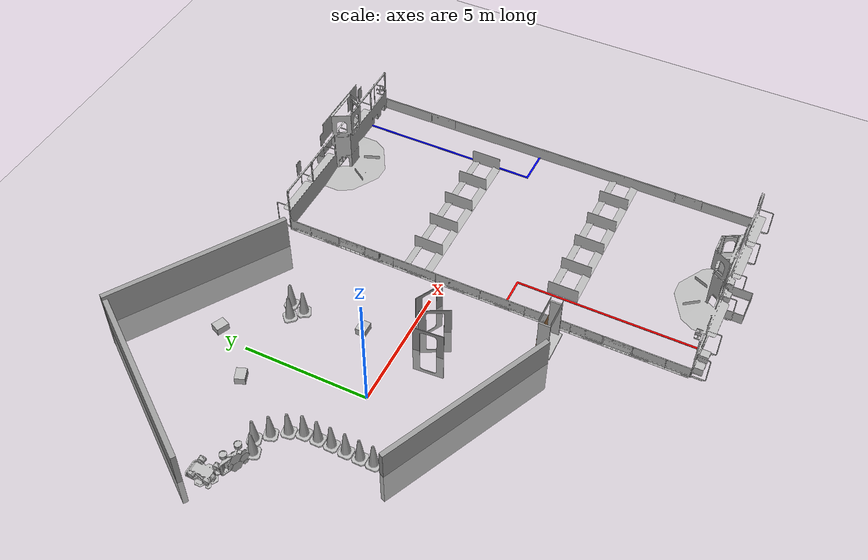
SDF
<sdf version="1.7">
 <world name="default">
  <light name="sun" type="directional">
   <pose>0 0 10 0 -0 0</pose>
   <diffuse>0.8 0.8 0.8 1</diffuse>
   <specular>0.2 0.2 0.2 1</specular>
   <attenuation>
    <range>1000</range>
    <constant>0.9</constant>
    <linear>0.01</linear>
    <quadratic>0.001</quadratic>
   </attenuation>
   <direction>-0.5 0.1 -0.9</direction>
   <spot><inner_angle>0</inner_angle><outer_angle>0</outer_angle><falloff>0</falloff></spot>
  </light>
  <model name="ground_plane">
   <static>1</static>
   <link name="link">
    <collision name="collision">
     <geometry><plane><normal>0 0 1</normal><size>100 100</size></plane></geometry>
     <surface>
      <contact><collide_bitmask>65535</collide_bitmask></contact>
      <friction><ode><mu>100</mu><mu2>50</mu2></ode></friction>
     </surface>
    </collision>
    <visual name="visual">
     <cast_shadows>0</cast_shadows>
     <geometry><plane><normal>0 0 1</normal><size>100 100</size></plane></geometry>
     <material>
      <script><uri>file://media/materials/scripts/gazebo.material</uri><name>Gazebo/Grey</name></script>
     </material>
    </visual>
   </link>
  </model>
  <gravity>0 0 -9.8</gravity>
  <magnetic_field>6e-06 2.3e-05 -4.2e-05</magnetic_field>
  <atmosphere type="adiabatic"/>
  <physics type="ode">
   <max_step_size>0.001</max_step_size>
   <real_time_factor>1</real_time_factor>
   <real_time_update_rate>1000</real_time_update_rate>
  </physics>
  <scene><ambient>0.4 0.4 0.4 1</ambient><background>0.7 0.7 0.7 1</background><shadows>1</shadows></scene>
  <audio><device>default</device></audio>
  <spherical_coordinates>
   <surface_model>EARTH_WGS84</surface_model>
   <latitude_deg>0</latitude_deg>
   <longitude_deg>0</longitude_deg>
   <elevation>0</elevation>
   <heading_deg>0</heading_deg>
  </spherical_coordinates>
  <model name="Construction Cone">
   <link name="link">
    <collision name="collision">
     <geometry>
      <mesh><scale>10 10 10</scale><uri>model://construction_cone/meshes/construction_cone.dae</uri></mesh>
     </geometry>
    </collision>
    <visual name="visual">
     <geometry>
      <mesh><scale>10 10 10</scale><uri>model://construction_cone/meshes/construction_cone.dae</uri></mesh>
     </geometry>
    </visual>
    <inertial>
     <inertia><ixx>1</ixx><ixy>0</ixy><ixz>0</ixz><iyy>1</iyy><iyz>0</iyz><izz>1</izz></inertia>
     <mass>1</mass>
    </inertial>
   </link>
   <pose>-2.26482 0.118974 -3e-06 -3e-06 -1e-06 -1.8e-05</pose>
  </model>
  <model name="Construction Cone_clone">
   <link name="link">
    <collision name="collision">
     <geometry>
      <mesh><scale>10 10 10</scale><uri>model://construction_cone/meshes/construction_cone.dae</uri></mesh>
     </geometry>
    </collision>
    <visual name="visual">
     <geometry>
      <mesh><scale>10 10 10</scale><uri>model://construction_cone/meshes/construction_cone.dae</uri></mesh>
     </geometry>
    </visual>
    <inertial>
     <inertia><ixx>1</ixx><ixy>0</ixy><ixz>0</ixz><iyy>1</iyy><iyz>0</iyz><izz>1</izz></inertia>
     <mass>1</mass>
    </inertial>
   </link>
   <pose>-2.2692 0.650098 -2e-06 -3e-06 -1e-06 -0</pose>
  </model>
  <model name="Construction Cone_clone_clone">
   <link name="link">
    <collision name="collision">
     <geometry>
      <mesh><scale>10 10 10</scale><uri>model://construction_cone/meshes/construction_cone.dae</uri></mesh>
     </geometry>
    </collision>
    <visual name="visual">
     <geometry>
      <mesh><scale>10 10 10</scale><uri>model://construction_cone/meshes/construction_cone.dae</uri></mesh>
     </geometry>
    </visual>
    <inertial>
     <inertia><ixx>1</ixx><ixy>0</ixy><ixz>0</ixz><iyy>1</iyy><iyz>0</iyz><izz>1</izz></inertia>
     <mass>1</mass>
    </inertial>
   </link>
   <pose>-2.27918 1.19398 -6e-06 -4e-06 -0 0.001973</pose>
  </model>
  <model name="Construction Cone_clone_clone_0">
   <link name="link">
    <collision name="collision">
     <geometry>
      <mesh><scale>10 10 10</scale><uri>model://construction_cone/meshes/construction_cone.dae</uri></mesh>
     </geometry>
    </collision>
    <visual name="visual">
     <geometry>
      <mesh><scale>10 10 10</scale><uri>model://construction_cone/meshes/construction_cone.dae</uri></mesh>
     </geometry>
    </visual>
    <inertial>
     <inertia><ixx>1</ixx><ixy>0</ixy><ixz>0</ixz><iyy>1</iyy><iyz>0</iyz><izz>1</izz></inertia>
     <mass>1</mass>
    </inertial>
   </link>
   <pose>-2.454 1.69918 0 0 -0 0.156364</pose>
  </model>
  <model name="Construction Cone_clone_clone_1">
   <link name="link">
    <collision name="collision">
     <geometry>
      <mesh><scale>10 10 10</scale><uri>model://construction_cone/meshes/construction_cone.dae</uri></mesh>
     </geometry>
    </collision>
    <visual name="visual">
     <geometry>
      <mesh><scale>10 10 10</scale><uri>model://construction_cone/meshes/construction_cone.dae</uri></mesh>
     </geometry>
    </visual>
    <inertial>
     <inertia><ixx>1</ixx><ixy>0</ixy><ixz>0</ixz><iyy>1</iyy><iyz>0</iyz><izz>1</izz></inertia>
     <mass>1</mass>
    </inertial>
   </link>
   <pose>-2.81331 2.20059 -9e-06 1e-06 -1e-06 0.33952</pose>
  </model>
  <model name="grey_wall">
   <static>1</static>
   <link name="link">
    <pose>0 0 1.4 0 -0 0</pose>
    <collision name="collision"><geometry><box><size>7.5 0.2 2.8</size></box></geometry></collision>
    <visual name="visual">
     <cast_shadows>0</cast_shadows>
     <geometry><box><size>7.5 0.2 2.8</size></box></geometry>
     <material>
      <script>
       <uri>model://grey_wall/materials/scripts</uri>
       <uri>model://grey_wall/materials/textures</uri>
       <name>vrc/grey_wall</name>
      </script>
     </material>
    </visual>
   </link>
   <pose>0.892861 -3.46173 -1.59967 0 0 -0.423133</pose>
  </model>
  <model name="Construction Cone_clone_0">
   <link name="link">
    <collision name="collision">
     <geometry>
      <mesh><scale>10 10 10</scale><uri>model://construction_cone/meshes/construction_cone.dae</uri></mesh>
     </geometry>
    </collision>
    <visual name="visual">
     <geometry>
      <mesh><scale>10 10 10</scale><uri>model://construction_cone/meshes/construction_cone.dae</uri></mesh>
     </geometry>
    </visual>
    <inertial>
     <inertia><ixx>1</ixx><ixy>0</ixy><ixz>0</ixz><iyy>1</iyy><iyz>0</iyz><izz>1</izz></inertia>
     <mass>1</mass>
    </inertial>
   </link>
   <pose>-2.28246 -0.445704 -6e-06 -4e-06 1e-06 -1.8e-05</pose>
  </model>
  <model name="Construction Cone_clone_1">
   <link name="link">
    <collision name="collision">
     <geometry>
      <mesh><scale>10 10 10</scale><uri>model://construction_cone/meshes/construction_cone.dae</uri></mesh>
     </geometry>
    </collision>
    <visual name="visual">
     <geometry>
      <mesh><scale>10 10 10</scale><uri>model://construction_cone/meshes/construction_cone.dae</uri></mesh>
     </geometry>
    </visual>
    <inertial>
     <inertia><ixx>1</ixx><ixy>0</ixy><ixz>0</ixz><iyy>1</iyy><iyz>0</iyz><izz>1</izz></inertia>
     <mass>1</mass>
    </inertial>
   </link>
   <pose>-2.28745 -0.990671 0 -0 -0 -1.8e-05</pose>
  </model>
  <model name="Construction Cone_clone_2">
   <link name="link">
    <collision name="collision">
     <geometry>
      <mesh><scale>10 10 10</scale><uri>model://construction_cone/meshes/construction_cone.dae</uri></mesh>
     </geometry>
    </collision>
    <visual name="visual">
     <geometry>
      <mesh><scale>10 10 10</scale><uri>model://construction_cone/meshes/construction_cone.dae</uri></mesh>
     </geometry>
    </visual>
    <inertial>
     <inertia><ixx>1</ixx><ixy>0</ixy><ixz>0</ixz><iyy>1</iyy><iyz>0</iyz><izz>1</izz></inertia>
     <mass>1</mass>
    </inertial>
   </link>
   <pose>-2.28327 -1.51157 -0 0 0 -1.8e-05</pose>
  </model>
  <model name="frc2016_drawbridge">
   <link name="base">
    <inertial>
     <mass>10</mass>
     <pose>0 0 1 0 -0 0</pose>
     <inertia><ixx>3.64907</ixx><ixy>0</ixy><ixz>0</ixz><iyy>4.67075</iyy><iyz>0</iyz><izz>1.66649</izz></inertia>
    </inertial>
    <visual name="platform">
     <pose>0 0 0.0425 0 -0 0</pose>
     <geometry><box><size>1.27 0.5969 0.085</size></box></geometry>
    </visual>
    <collision name="platform">
     <pose>0 0 0.0425 0 -0 0</pose>
     <geometry><box><size>1.27 0.5969 0.085</size></box></geometry>
    </collision>
    <visual name="right_wall">
     <pose>0.55879 0.04444 0.889 0 -0 0</pose>
     <geometry><box><size>0.05715 0.45698 1.77165</size></box></geometry>
    </visual>
    <collision name="right_wall">
     <pose>0.55879 0.04444 0.889 0 -0 0</pose>
     <geometry><box><size>0.05715 0.45698 1.77165</size></box></geometry>
    </collision>
    <visual name="left_wall">
     <pose>-0.55879 0.04444 0.889 0 -0 0</pose>
     <geometry><box><size>0.05715 0.45698 1.77165</size></box></geometry>
    </visual>
    <collision name="left_wall">
     <pose>-0.55879 0.04444 0.889 0 -0 0</pose>
     <geometry><box><size>0.05715 0.45698 1.77165</size></box></geometry>
    </collision>
    <visual name="front_upper_wall">
     <pose>0 0.27611 1.84286 0 -0 0</pose>
     <geometry><box><size>1.1557 0.006347 0.254</size></box></geometry>
    </visual>
    <collision name="front_upper_wall">
     <pose>0 0.27611 1.84286 0 -0 0</pose>
     <geometry><box><size>1.1557 0.006347 0.254</size></box></geometry>
    </collision>
    <visual name="back_upper_wall">
     <pose>0 -0.18722 1.84286 0 -0 0</pose>
     <geometry><box><size>1.1557 0.006347 0.254</size></box></geometry>
    </visual>
    <collision name="back_upper_wall">
     <pose>0 -0.18722 1.84286 0 -0 0</pose>
     <geometry><box><size>1.1557 0.006347 0.254</size></box></geometry>
    </collision>
   </link>
   <link name="bridge">
    <pose>0 0.28245 0.50577 0 -0 0</pose>
    <inertial>
     <mass>2</mass>
     <pose>0 -0.28245 -0.50577 0 -0 0</pose>
     <inertia>
      <ixx>0.139361</ixx>
      <ixy>0</ixy>
      <ixz>0</ixz>
      <iyy>0.357088</iyy>
      <iyz>0</iyz>
      <izz>0.217741</izz>
     </inertia>
    </inertial>
    <visual name="visual">
     <geometry><box><size>1.14298 0.006347 0.9144</size></box></geometry>
     <material><script><name>Gazebo/WoodFloor</name><uri>__default__</uri></script></material>
    </visual>
    <collision name="collision"><geometry><box><size>1.14298 0.006347 0.9144</size></box></geometry></collision>
   </link>
   <joint name="bridge_joint" type="revolute">
    <pose>0 0 -0.4172 0 -0 0</pose>
    <parent>base</parent>
    <child>bridge</child>
    <axis>
     <xyz>1 0 0</xyz>
     <limit><lower>-2</lower><upper>0</upper></limit>
     <dynamics><spring_reference>0</spring_reference><spring_stiffness>0</spring_stiffness></dynamics>
    </axis>
   </joint>
   <pose>5.03385 -4.79171 0 0 1e-06 0.006136</pose>
  </model>
  <model name="frc2016_field">
   <static>1</static>
   <link name="walls">
    <visual name="walls_visual">
     <geometry><mesh><uri>model://frc2016_field/meshes/walls.dae</uri></mesh></geometry>
    </visual>
    <collision name="front_turret">
     <geometry><mesh><uri>model://frc2016_field/meshes/turret_collide.dae</uri></mesh></geometry>
    </collision>
    <collision name="back_turret">
     <pose>0 0 0 0 -0 3.1415</pose>
     <geometry><mesh><uri>model://frc2016_field/meshes/turret_collide.dae</uri></mesh></geometry>
    </collision>
    <collision name="left_wall">
     <pose>4.09997 0 0.2413 0 -0 0</pose>
     <geometry><box><size>0.1 16.4592 0.4826</size></box></geometry>
    </collision>
    <collision name="right_wall">
     <pose>-4.09997 0 0.2413 0 -0 0</pose>
     <geometry><box><size>0.1 16.4592 0.4826</size></box></geometry>
    </collision>
    <collision name="front_solid_wall">
     <pose>-2.2105 8.2196 1 0 -0 0</pose>
     <geometry><box><size>3.8 0.1 2</size></box></geometry>
    </collision>
    <collision name="back_solid_wall">
     <pose>2.2105 -8.2196 1 0 -0 0</pose>
     <geometry><box><size>3.8 0.1 2</size></box></geometry>
    </collision>
    <collision name="front_partial_wall">
     <pose>1.85 8.2196 1 0 -0 0</pose>
     <geometry><box><size>2.1 0.1 2</size></box></geometry>
    </collision>
    <collision name="front_partial_wall_mid">
     <pose>3.4 8.2196 0.86 0 -0 0</pose>
     <geometry><box><size>1.25 0.1 1.12</size></box></geometry>
    </collision>
    <collision name="front_partial_wall_lower_left">
     <pose>3.36 8.2196 0.25 0 -0 0</pose>
     <geometry><box><size>0.3 0.1 0.5</size></box></geometry>
    </collision>
    <collision name="front_partial_wall_lower_right">
     <pose>4 8.2196 0.25 0 -0 0</pose>
     <geometry><box><size>0.3 0.1 0.5</size></box></geometry>
    </collision>
    <collision name="front_partial_wall_upper_right">
     <pose>3.76 8.2196 1.7 0 -0 0</pose>
     <geometry><box><size>0.54 0.1 0.6</size></box></geometry>
    </collision>
    <collision name="front_partial_wall_upper_left">
     <pose>2.95 8.2196 1.7 0 -0 0</pose>
     <geometry><box><size>0.54 0.1 0.6</size></box></geometry>
    </collision>
    <collision name="front_partial_wall_upper_mid">
     <pose>3.36 8.2196 1.84 0 -0 0</pose>
     <geometry><box><size>0.3 0.1 0.3</size></box></geometry>
    </collision>
    <collision name="back_partial_wall">
     <pose>-1.85 -8.2196 1 0 -0 0</pose>
     <geometry><box><size>2.1 0.1 2</size></box></geometry>
    </collision>
    <collision name="back_partial_wall_mid">
     <pose>-3.4 -8.2196 0.86 0 -0 0</pose>
     <geometry><box><size>1.25 0.1 1.12</size></box></geometry>
    </collision>
    <collision name="back_partial_wall_lower_left">
     <pose>-3.36 -8.2196 0.25 0 -0 0</pose>
     <geometry><box><size>0.3 0.1 0.5</size></box></geometry>
    </collision>
    <collision name="back_partial_wall_lower_right">
     <pose>-4 -8.2196 0.25 0 -0 0</pose>
     <geometry><box><size>0.3 0.1 0.5</size></box></geometry>
    </collision>
    <collision name="back_partial_wall_upper_right">
     <pose>-3.76 -8.2196 1.7 0 -0 0</pose>
     <geometry><box><size>0.54 0.1 0.6</size></box></geometry>
    </collision>
    <collision name="back_partial_wall_upper_left">
     <pose>-2.95 -8.2196 1.7 0 -0 0</pose>
     <geometry><box><size>0.54 0.1 0.6</size></box></geometry>
    </collision>
    <collision name="back_partial_wall_upper_mid">
     <pose>-3.36 -8.2196 1.84 0 -0 0</pose>
     <geometry><box><size>0.3 0.1 0.3</size></box></geometry>
    </collision>
    <visual name="blue_passage_border_long">
     <pose>2.72665 4.5882 0.0127 0 -0 0</pose>
     <geometry><box><size>0.0762 7.3025 0.0254</size></box></geometry>
     <material><ambient>0 0 1 1</ambient><diffuse>0 0 1 1</diffuse></material>
    </visual>
    <collision name="blue_passage_border_long">
     <pose>2.72665 4.5882 0.0127 0 -0 0</pose>
     <geometry><box><size>0.0762 7.3025 0.0254</size></box></geometry>
    </collision>
    <visual name="blue_passage_border_short">
     <pose>3.37435 0.97352 0.0127 0 -0 0</pose>
     <geometry><box><size>1.37165 0.0762 0.0254</size></box></geometry>
     <material><ambient>0 0 1 1</ambient><diffuse>0 0 1 1</diffuse></material>
    </visual>
    <collision name="blue_passage_border_short">
     <pose>3.37435 0.97352 0.0127 0 -0 0</pose>
     <geometry><box><size>1.37165 0.0762 0.0254</size></box></geometry>
    </collision>
    <visual name="blue_divider_1">
     <pose>2.63052 2.80648 0.31114 0 -0 0</pose>
     <geometry><box><size>0.009525 1.2192 0.6096</size></box></geometry>
    </visual>
    <collision name="blue_divider_1">
     <pose>2.63052 2.80648 0.31114 0 -0 0</pose>
     <geometry><box><size>0.009525 1.2192 0.6096</size></box></geometry>
    </collision>
    <visual name="blue_divider_2">
     <pose>1.28432 2.80648 0.31114 0 -0 0</pose>
     <geometry><box><size>0.009525 1.2192 0.6096</size></box></geometry>
    </visual>
    <collision name="blue_divider_2">
     <pose>1.28432 2.80648 0.31114 0 -0 0</pose>
     <geometry><box><size>0.009525 1.2192 0.6096</size></box></geometry>
    </collision>
    <visual name="blue_divider_3">
     <pose>-0.06189 2.80648 0.31114 0 -0 0</pose>
     <geometry><box><size>0.009525 1.2192 0.6096</size></box></geometry>
    </visual>
    <collision name="blue_divider_3">
     <pose>-0.06189 2.80648 0.31114 0 -0 0</pose>
     <geometry><box><size>0.009525 1.2192 0.6096</size></box></geometry>
    </collision>
    <visual name="blue_divider_4">
     <pose>-1.40809 2.80648 0.31114 0 -0 0</pose>
     <geometry><box><size>0.009525 1.2192 0.6096</size></box></geometry>
    </visual>
    <collision name="blue_divider_4">
     <pose>-1.40809 2.80648 0.31114 0 -0 0</pose>
     <geometry><box><size>0.009525 1.2192 0.6096</size></box></geometry>
    </collision>
    <visual name="blue_divider_5">
     <pose>-2.75428 2.80648 0.31114 0 -0 0</pose>
     <geometry><box><size>0.009525 1.2192 0.6096</size></box></geometry>
    </visual>
    <collision name="blue_divider_5">
     <pose>-2.75428 2.80648 0.31114 0 -0 0</pose>
     <geometry><box><size>0.009525 1.2192 0.6096</size></box></geometry>
    </collision>
    <visual name="blue_barrier_ramp_up">
     <pose>-0.7334 3.22301 0.05063 -0.248866 0 0</pose>
     <geometry><box><size>6.71817 0.3048 0.00635</size></box></geometry>
    </visual>
    <collision name="blue_barrier_ramp_up">
     <pose>-0.7334 3.22301 0.05063 -0.248866 0 0</pose>
     <geometry><box><size>6.71817 0.3048 0.00635</size></box></geometry>
    </collision>
    <visual name="blue_barrier_ramp_down">
     <pose>-0.7334 2.31802 0.05063 0.248866 -0 0</pose>
     <geometry><box><size>6.71817 0.3048 0.00635</size></box></geometry>
    </visual>
    <collision name="blue_barrier_ramp_down">
     <pose>-0.7334 2.31802 0.05063 0.248866 -0 0</pose>
     <geometry><box><size>6.71817 0.3048 0.00635</size></box></geometry>
    </collision>
    <visual name="red_passage_border_long">
     <pose>-2.7273 -4.58839 0.0127 0 -0 0</pose>
     <geometry><box><size>0.0762 7.3025 0.0254</size></box></geometry>
     <material><ambient>1 0 0 1</ambient><diffuse>1 0 0 1</diffuse></material>
    </visual>
    <collision name="red_passage_border_long">
     <pose>-2.7273 -4.58839 0.0127 0 -0 0</pose>
     <geometry><box><size>0.0762 7.3025 0.0254</size></box></geometry>
    </collision>
    <visual name="red_passage_border_short">
     <pose>-3.375 -0.97372 0.0127 0 -0 0</pose>
     <geometry><box><size>1.37165 0.0762 0.0254</size></box></geometry>
     <material><ambient>1 0 0 1</ambient><diffuse>1 0 0 1</diffuse></material>
    </visual>
    <collision name="red_passage_border_short">
     <pose>-3.375 -0.97372 0.0127 0 -0 0</pose>
     <geometry><box><size>1.37165 0.0762 0.0254</size></box></geometry>
    </collision>
    <visual name="red_divider_1">
     <pose>-2.63117 -2.76442 0.31114 0 -0 0</pose>
     <geometry><box><size>0.009525 1.2192 0.6096</size></box></geometry>
    </visual>
    <collision name="red_divider_1">
     <pose>-2.63117 -2.72845 0.31114 0 -0 0</pose>
     <geometry><box><size>0.009525 1.2192 0.6096</size></box></geometry>
    </collision>
    <visual name="red_divider_2">
     <pose>-1.28496 -2.76442 0.31114 0 -0 0</pose>
     <geometry><box><size>0.009525 1.2192 0.6096</size></box></geometry>
    </visual>
    <collision name="red_divider_2">
     <pose>-1.28496 -2.76442 0.31114 0 -0 0</pose>
     <geometry><box><size>0.009525 1.2192 0.6096</size></box></geometry>
    </collision>
    <visual name="red_divider_3">
     <pose>0.06124 -2.76442 0.31114 0 -0 0</pose>
     <geometry><box><size>0.009525 1.2192 0.6096</size></box></geometry>
    </visual>
    <collision name="red_divider_3">
     <pose>0.06124 -2.76442 0.31114 0 -0 0</pose>
     <geometry><box><size>0.009525 1.2192 0.6096</size></box></geometry>
    </collision>
    <visual name="red_divider_4">
     <pose>1.40744 -2.76442 0.31114 0 -0 0</pose>
     <geometry><box><size>0.009525 1.2192 0.6096</size></box></geometry>
    </visual>
    <collision name="red_divider_4">
     <pose>1.40744 -2.76442 0.31114 0 -0 0</pose>
     <geometry><box><size>0.009525 1.2192 0.6096</size></box></geometry>
    </collision>
    <visual name="red_divider_5">
     <pose>2.75363 -2.76442 0.31114 0 -0 0</pose>
     <geometry><box><size>0.009525 1.2192 0.6096</size></box></geometry>
    </visual>
    <collision name="red_divider_5">
     <pose>2.75363 -2.76442 0.31114 0 -0 0</pose>
     <geometry><box><size>0.009525 1.2192 0.6096</size></box></geometry>
    </collision>
    <visual name="red_barrier_ramp_down">
     <pose>0.73275 -2.31261 0.05063 -0.248866 0 0</pose>
     <geometry><box><size>6.71817 0.3048 0.00635</size></box></geometry>
    </visual>
    <collision name="red_barrier_ramp_down">
     <pose>0.73275 -2.31261 0.05063 -0.248866 0 0</pose>
     <geometry><box><size>6.71817 0.3048 0.00635</size></box></geometry>
    </collision>
    <visual name="red_barrier_ramp_up">
     <pose>0.73275 -3.21691 0.05063 0.248866 -0 0</pose>
     <geometry><box><size>6.71817 0.3048 0.00635</size></box></geometry>
    </visual>
    <collision name="red_barrier_ramp_up">
     <pose>0.73275 -3.21691 0.05063 0.248866 -0 0</pose>
     <geometry><box><size>6.71817 0.3048 0.00635</size></box></geometry>
    </collision>
   </link>
   <pose>10.0207 -1.61644 0 0 -0 0</pose>
  </model>
  <model name="door_4x8">
   <static>1</static>
   <link name="door">
    <collision name="collision">
     <geometry><mesh><uri>model://drc_practice_door_4x8/meshes/4x8ftdoor.dae</uri></mesh></geometry>
    </collision>
    <visual name="visual">
     <geometry><mesh><uri>model://drc_practice_door_4x8/meshes/4x8ftdoor.dae</uri></mesh></geometry>
    </visual>
   </link>
   <pose>3.75298 -0.821834 0 0 0 -1.0752</pose>
  </model>
  <model name="door_4x8_clone">
   <static>1</static>
   <link name="door">
    <collision name="collision">
     <geometry><mesh><uri>model://drc_practice_door_4x8/meshes/4x8ftdoor.dae</uri></mesh></geometry>
    </collision>
    <visual name="visual">
     <geometry><mesh><uri>model://drc_practice_door_4x8/meshes/4x8ftdoor.dae</uri></mesh></geometry>
    </visual>
   </link>
   <pose>4.47889 -0.217023 0 0 0 -0.48408</pose>
  </model>
  <model name="door_4x8_clone_0">
   <static>1</static>
   <link name="door">
    <collision name="collision">
     <geometry><mesh><uri>model://drc_practice_door_4x8/meshes/4x8ftdoor.dae</uri></mesh></geometry>
    </collision>
    <visual name="visual">
     <geometry><mesh><uri>model://drc_practice_door_4x8/meshes/4x8ftdoor.dae</uri></mesh></geometry>
    </visual>
   </link>
   <pose>2.74514 -1.0404 0 0 0 -1.49909</pose>
  </model>
  <model name="cardboard_box">
   <pose>2.60794 1.55554 0.149 0 -0 0</pose>
   <link name="link">
    <inertial>
     <mass>2</mass>
     <inertia>
      <ixx>0.0416667</ixx>
      <ixy>0</ixy>
      <ixz>0</ixz>
      <iyy>0.0566667</iyy>
      <iyz>0</iyz>
      <izz>0.0683333</izz>
     </inertia>
    </inertial>
    <collision name="collision">
     <geometry><box><size>0.5 0.4 0.3</size></box></geometry>
     <surface>
      <friction><ode><mu>1</mu><mu2>1</mu2></ode></friction>
      <contact><ode><kp>1e+07</kp><kd>1</kd><min_depth>0.001</min_depth><max_vel>0.1</max_vel></ode></contact>
     </surface>
    </collision>
    <visual name="visual">
     <pose>0 0 -0.15 0 -0 0</pose>
     <geometry>
      <mesh><uri>model://cardboard_box/meshes/cardboard_box.dae</uri><scale>1.25932 1.00745 0.755591</scale></mesh>
     </geometry>
    </visual>
   </link>
  </model>
  <model name="cardboard_box_clone">
   <pose>0.360409 6.30442 0.149 0 0 -0.416437</pose>
   <link name="link">
    <inertial>
     <mass>2</mass>
     <inertia>
      <ixx>0.0416667</ixx>
      <ixy>0</ixy>
      <ixz>0</ixz>
      <iyy>0.0566667</iyy>
      <iyz>0</iyz>
      <izz>0.0683333</izz>
     </inertia>
    </inertial>
    <collision name="collision">
     <geometry><box><size>0.5 0.4 0.3</size></box></geometry>
     <surface>
      <friction><ode><mu>1</mu><mu2>1</mu2></ode></friction>
      <contact><ode><kp>1e+07</kp><kd>1</kd><min_depth>0.001</min_depth><max_vel>0.1</max_vel></ode></contact>
     </surface>
    </collision>
    <visual name="visual">
     <pose>0 0 -0.15 0 -0 0</pose>
     <geometry>
      <mesh><uri>model://cardboard_box/meshes/cardboard_box.dae</uri><scale>1.25932 1.00745 0.755591</scale></mesh>
     </geometry>
    </visual>
   </link>
  </model>
  <model name="cardboard_box_clone_0">
   <pose>-1.22218 4.40958 0.149 0 -0 0.375983</pose>
   <link name="link">
    <inertial>
     <mass>2</mass>
     <inertia>
      <ixx>0.0416667</ixx>
      <ixy>0</ixy>
      <ixz>0</ixz>
      <iyy>0.0566667</iyy>
      <iyz>0</iyz>
      <izz>0.0683333</izz>
     </inertia>
    </inertial>
    <collision name="collision">
     <geometry><box><size>0.5 0.4 0.3</size></box></geometry>
     <surface>
      <friction><ode><mu>1</mu><mu2>1</mu2></ode></friction>
      <contact><ode><kp>1e+07</kp><kd>1</kd><min_depth>0.001</min_depth><max_vel>0.1</max_vel></ode></contact>
     </surface>
    </collision>
    <visual name="visual">
     <pose>0 0 -0.15 0 -0 0</pose>
     <geometry>
      <mesh><uri>model://cardboard_box/meshes/cardboard_box.dae</uri><scale>1.25932 1.00745 0.755591</scale></mesh>
     </geometry>
    </visual>
   </link>
  </model>
  <model name="grey_wall_0">
   <static>1</static>
   <link name="link">
    <pose>0 0 1.4 0 -0 0</pose>
    <collision name="collision"><geometry><box><size>7.5 0.2 2.8</size></box></geometry></collision>
    <visual name="visual">
     <cast_shadows>0</cast_shadows>
     <geometry><box><size>7.5 0.2 2.8</size></box></geometry>
     <material>
      <script>
       <uri>model://grey_wall/materials/scripts</uri>
       <uri>model://grey_wall/materials/textures</uri>
       <name>vrc/grey_wall</name>
      </script>
     </material>
    </visual>
   </link>
   <pose>1.96133 8.25591 -1.35185 0 0 -0.558087</pose>
  </model>
  <model name="grey_wall_0_clone">
   <static>1</static>
   <link name="link">
    <pose>0 0 1.4 0 -0 0</pose>
    <collision name="collision"><geometry><box><size>7.5 0.2 2.8</size></box></geometry></collision>
    <visual name="visual">
     <cast_shadows>0</cast_shadows>
     <geometry><box><size>7.5 0.2 2.8</size></box></geometry>
     <material>
      <script>
       <uri>model://grey_wall/materials/scripts</uri>
       <uri>model://grey_wall/materials/textures</uri>
       <name>vrc/grey_wall</name>
      </script>
     </material>
    </visual>
   </link>
   <pose>-3.50317 6.97665 -1.35185 0 0 -2.20637</pose>
  </model>
  <model name="Construction Cone_clone_clone_2_clone">
   <link name="link">
    <collision name="collision">
     <geometry>
      <mesh><scale>10 10 10</scale><uri>model://construction_cone/meshes/construction_cone.dae</uri></mesh>
     </geometry>
    </collision>
    <visual name="visual">
     <geometry>
      <mesh><scale>10 10 10</scale><uri>model://construction_cone/meshes/construction_cone.dae</uri></mesh>
     </geometry>
    </visual>
    <inertial>
     <inertia><ixx>1</ixx><ixy>0</ixy><ixz>0</ixz><iyy>1</iyy><iyz>0</iyz><izz>1</izz></inertia>
     <mass>1</mass>
    </inertial>
   </link>
   <pose>2.39839 3.94282 0 -0 -0 -1.0373</pose>
  </model>
  <model name="Construction Cone_clone_clone_2_clone_0">
   <link name="link">
    <collision name="collision">
     <geometry>
      <mesh><scale>10 10 10</scale><uri>model://construction_cone/meshes/construction_cone.dae</uri></mesh>
     </geometry>
    </collision>
    <visual name="visual">
     <geometry>
      <mesh><scale>10 10 10</scale><uri>model://construction_cone/meshes/construction_cone.dae</uri></mesh>
     </geometry>
    </visual>
    <inertial>
     <inertia><ixx>1</ixx><ixy>0</ixy><ixz>0</ixz><iyy>1</iyy><iyz>0</iyz><izz>1</izz></inertia>
     <mass>1</mass>
    </inertial>
   </link>
   <pose>1.9622 4.29903 -0 0 -1e-06 -0.82198</pose>
  </model>
  <model name="Construction Cone_clone_clone_2_clone_1">
   <link name="link">
    <collision name="collision">
     <geometry>
      <mesh><scale>10 10 10</scale><uri>model://construction_cone/meshes/construction_cone.dae</uri></mesh>
     </geometry>
    </collision>
    <visual name="visual">
     <geometry>
      <mesh><scale>10 10 10</scale><uri>model://construction_cone/meshes/construction_cone.dae</uri></mesh>
     </geometry>
    </visual>
    <inertial>
     <inertia><ixx>1</ixx><ixy>0</ixy><ixz>0</ixz><iyy>1</iyy><iyz>0</iyz><izz>1</izz></inertia>
     <mass>1</mass>
    </inertial>
   </link>
   <pose>2.52798 4.55521 -6e-06 -4e-06 0 0.128174</pose>
  </model>
  <model name="Construction Cone_clone_clone_1_clone">
   <link name="link">
    <collision name="collision">
     <geometry>
      <mesh><scale>10 10 10</scale><uri>model://construction_cone/meshes/construction_cone.dae</uri></mesh>
     </geometry>
    </collision>
    <visual name="visual">
     <geometry>
      <mesh><scale>10 10 10</scale><uri>model://construction_cone/meshes/construction_cone.dae</uri></mesh>
     </geometry>
    </visual>
    <inertial>
     <inertia><ixx>1</ixx><ixy>0</ixy><ixz>0</ixz><iyy>1</iyy><iyz>0</iyz><izz>1</izz></inertia>
     <mass>1</mass>
    </inertial>
   </link>
   <pose>-3.22645 2.60766 -1e-05 0 -0 0.33952</pose>
  </model>
  <model name="mars_rover">
   <static>1</static>
   <link name="link">
    <collision name="solar_panel_collision">
     <pose>0 -0.06945 0.47293 0 -0 0</pose>
     <geometry><box><size>0.87974 0.8821 0.02602</size></box></geometry>
    </collision>
    <collision name="chassis_collision">
     <pose>0 -0.05 0.31475 0 -0 0</pose>
     <geometry><box><size>0.49522 0.67401 0.28915</size></box></geometry>
    </collision>
    <collision name="rear_left_bumper_collision">
     <pose>0.30107 0.3835 0.38976 0 -0 0</pose>
     <geometry><box><size>0.04442 0.38897 0.07918</size></box></geometry>
    </collision>
    <collision name="rear_right_bumper_collision">
     <pose>-0.30107 0.3835 0.38976 0 -0 0</pose>
     <geometry><box><size>0.04442 0.38897 0.07918</size></box></geometry>
    </collision>
    <collision name="rear_bumper_collision">
     <pose>0 0.59414 0.38976 0 -0 0</pose>
     <geometry><box><size>0.56656 0.04442 0.07918</size></box></geometry>
    </collision>
    <collision name="bin_back_panel_collision">
     <pose>0 0.47 0.32114 0.69137 -0 0</pose>
     <geometry><box><size>0.43774 0.212366 0.05173</size></box></geometry>
    </collision>
    <collision name="bin_left_panel_collision1">
     <pose>0.22615 0.32897 0.33193 0 -0 0</pose>
     <geometry><box><size>0.01116 0.19338 0.16304</size></box></geometry>
    </collision>
    <collision name="bin_left_panel_collision2">
     <pose>0.22615 0.471 0.39308 0 -0 0</pose>
     <geometry><box><size>0.01116 0.15 0.04</size></box></geometry>
    </collision>
    <collision name="bin_left_panel_collision3">
     <pose>0.22615 0.45 0.35308 0 -0 0</pose>
     <geometry><box><size>0.01116 0.15 0.04</size></box></geometry>
    </collision>
    <collision name="bin_left_panel_collision4">
     <pose>0.22615 0.39308 0.31308 0 -0 0</pose>
     <geometry><box><size>0.01116 0.15 0.04</size></box></geometry>
    </collision>
    <collision name="bin_right_panel_collision1">
     <pose>-0.22615 0.32897 0.33193 0 -0 0</pose>
     <geometry><box><size>0.01116 0.19338 0.16304</size></box></geometry>
    </collision>
    <collision name="bin_right_panel_collision2">
     <pose>-0.22615 0.471 0.39308 0 -0 0</pose>
     <geometry><box><size>0.01116 0.15 0.04</size></box></geometry>
    </collision>
    <collision name="bin_right_panel_collision3">
     <pose>-0.22615 0.45 0.35308 0 -0 0</pose>
     <geometry><box><size>0.01116 0.15 0.04</size></box></geometry>
    </collision>
    <collision name="bin_right_panel_collision4">
     <pose>-0.22615 0.39308 0.31308 0 -0 0</pose>
     <geometry><box><size>0.01116 0.15 0.04</size></box></geometry>
    </collision>
    <collision name="bin_front_panel_collision">
     <pose>0 0.30047 0.32114 2.26207 -0 0</pose>
     <geometry><box><size>0.43774 0.212366 0.05173</size></box></geometry>
    </collision>
    <collision name="front_left_wheel_collision">
     <pose>0.31103 -0.32115 0.1358 1.5707 0 1.5707</pose>
     <geometry><cylinder><radius>0.1358</radius><length>0.1641</length></cylinder></geometry>
    </collision>
    <collision name="front_right_wheel_collision">
     <pose>-0.31103 -0.32115 0.1358 1.5707 0 1.5707</pose>
     <geometry><cylinder><radius>0.1358</radius><length>0.1641</length></cylinder></geometry>
    </collision>
    <collision name="rear_left_wheel_collision">
     <pose>0.31103 0.28049 0.1358 1.5707 0 1.5707</pose>
     <geometry><cylinder><radius>0.1358</radius><length>0.1641</length></cylinder></geometry>
    </collision>
    <collision name="rear_right_wheel_collision">
     <pose>-0.31103 0.28049 0.1358 1.5707 0 1.5707</pose>
     <geometry><cylinder><radius>0.1358</radius><length>0.1641</length></cylinder></geometry>
    </collision>
    <visual name="visual">
     <geometry><mesh><uri>model://mars_rover/meshes/rover.dae</uri></mesh></geometry>
    </visual>
   </link>
   <pose>-5.17302 3.32484 0.493331 3.14159 0.006906 3.14159</pose>
  </model>
  <model name="mars_rover_clone">
   <static>1</static>
   <link name="link">
    <collision name="solar_panel_collision">
     <pose>0 -0.06945 0.47293 0 -0 0</pose>
     <geometry><box><size>0.87974 0.8821 0.02602</size></box></geometry>
    </collision>
    <collision name="chassis_collision">
     <pose>0 -0.05 0.31475 0 -0 0</pose>
     <geometry><box><size>0.49522 0.67401 0.28915</size></box></geometry>
    </collision>
    <collision name="rear_left_bumper_collision">
     <pose>0.30107 0.3835 0.38976 0 -0 0</pose>
     <geometry><box><size>0.04442 0.38897 0.07918</size></box></geometry>
    </collision>
    <collision name="rear_right_bumper_collision">
     <pose>-0.30107 0.3835 0.38976 0 -0 0</pose>
     <geometry><box><size>0.04442 0.38897 0.07918</size></box></geometry>
    </collision>
    <collision name="rear_bumper_collision">
     <pose>0 0.59414 0.38976 0 -0 0</pose>
     <geometry><box><size>0.56656 0.04442 0.07918</size></box></geometry>
    </collision>
    <collision name="bin_back_panel_collision">
     <pose>0 0.47 0.32114 0.69137 -0 0</pose>
     <geometry><box><size>0.43774 0.212366 0.05173</size></box></geometry>
    </collision>
    <collision name="bin_left_panel_collision1">
     <pose>0.22615 0.32897 0.33193 0 -0 0</pose>
     <geometry><box><size>0.01116 0.19338 0.16304</size></box></geometry>
    </collision>
    <collision name="bin_left_panel_collision2">
     <pose>0.22615 0.471 0.39308 0 -0 0</pose>
     <geometry><box><size>0.01116 0.15 0.04</size></box></geometry>
    </collision>
    <collision name="bin_left_panel_collision3">
     <pose>0.22615 0.45 0.35308 0 -0 0</pose>
     <geometry><box><size>0.01116 0.15 0.04</size></box></geometry>
    </collision>
    <collision name="bin_left_panel_collision4">
     <pose>0.22615 0.39308 0.31308 0 -0 0</pose>
     <geometry><box><size>0.01116 0.15 0.04</size></box></geometry>
    </collision>
    <collision name="bin_right_panel_collision1">
     <pose>-0.22615 0.32897 0.33193 0 -0 0</pose>
     <geometry><box><size>0.01116 0.19338 0.16304</size></box></geometry>
    </collision>
    <collision name="bin_right_panel_collision2">
     <pose>-0.22615 0.471 0.39308 0 -0 0</pose>
     <geometry><box><size>0.01116 0.15 0.04</size></box></geometry>
    </collision>
    <collision name="bin_right_panel_collision3">
     <pose>-0.22615 0.45 0.35308 0 -0 0</pose>
     <geometry><box><size>0.01116 0.15 0.04</size></box></geometry>
    </collision>
    <collision name="bin_right_panel_collision4">
     <pose>-0.22615 0.39308 0.31308 0 -0 0</pose>
     <geometry><box><size>0.01116 0.15 0.04</size></box></geometry>
    </collision>
    <collision name="bin_front_panel_collision">
     <pose>0 0.30047 0.32114 2.26207 -0 0</pose>
     <geometry><box><size>0.43774 0.212366 0.05173</size></box></geometry>
    </collision>
    <collision name="front_left_wheel_collision">
     <pose>0.31103 -0.32115 0.1358 1.5707 0 1.5707</pose>
     <geometry><cylinder><radius>0.1358</radius><length>0.1641</length></cylinder></geometry>
    </collision>
    <collision name="front_right_wheel_collision">
     <pose>-0.31103 -0.32115 0.1358 1.5707 0 1.5707</pose>
     <geometry><cylinder><radius>0.1358</radius><length>0.1641</length></cylinder></geometry>
    </collision>
    <collision name="rear_left_wheel_collision">
     <pose>0.31103 0.28049 0.1358 1.5707 0 1.5707</pose>
     <geometry><cylinder><radius>0.1358</radius><length>0.1641</length></cylinder></geometry>
    </collision>
    <collision name="rear_right_wheel_collision">
     <pose>-0.31103 0.28049 0.1358 1.5707 0 1.5707</pose>
     <geometry><cylinder><radius>0.1358</radius><length>0.1641</length></cylinder></geometry>
    </collision>
    <visual name="visual">
     <geometry><mesh><uri>model://mars_rover/meshes/rover.dae</uri></mesh></geometry>
    </visual>
   </link>
   <pose>-4.25655 2.92525 0.403076 -1.96398 -1.56639 -3.14099</pose>
  </model>
  <model name="Construction Cone_clone_clone_1_clone_clone">
   <link name="link">
    <collision name="collision">
     <geometry>
      <mesh><scale>10 10 10</scale><uri>model://construction_cone/meshes/construction_cone.dae</uri></mesh>
     </geometry>
    </collision>
    <visual name="visual">
     <geometry>
      <mesh><scale>10 10 10</scale><uri>model://construction_cone/meshes/construction_cone.dae</uri></mesh>
     </geometry>
    </visual>
    <inertial>
     <inertia><ixx>1</ixx><ixy>0</ixy><ixz>0</ixz><iyy>1</iyy><iyz>0</iyz><izz>1</izz></inertia>
     <mass>1</mass>
    </inertial>
   </link>
   <pose>-3.7109 2.35332 -1e-05 0 -0 0.33952</pose>
  </model>
 </world>
</sdf>
